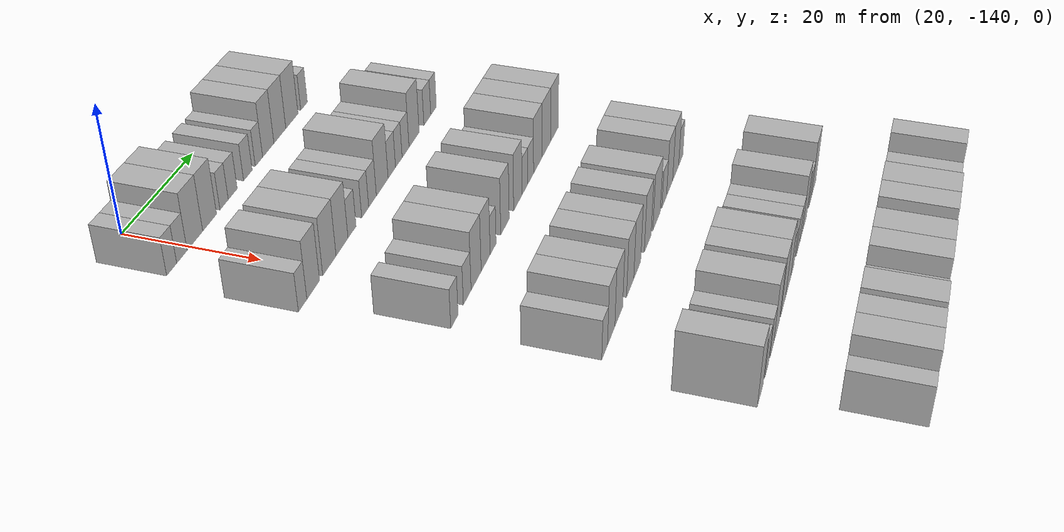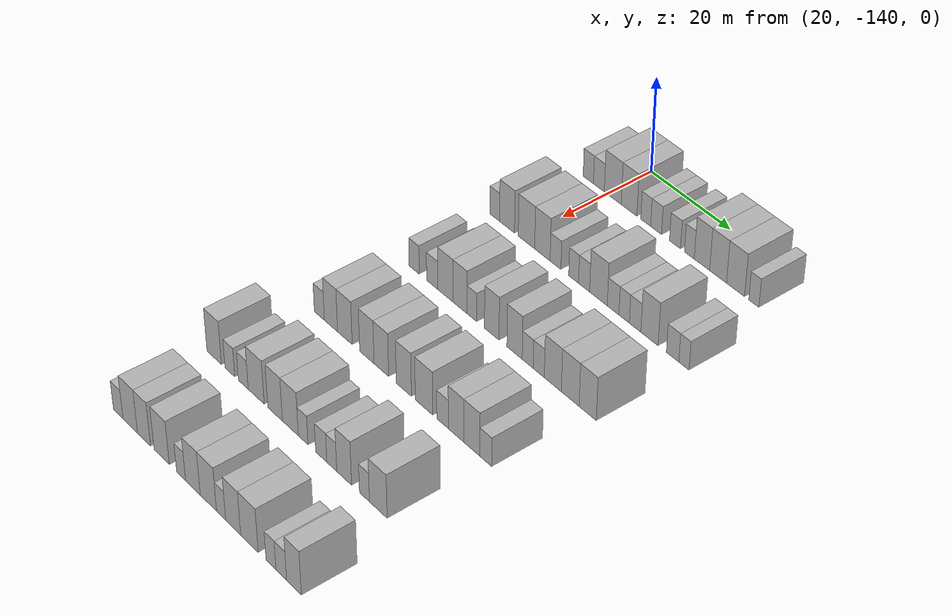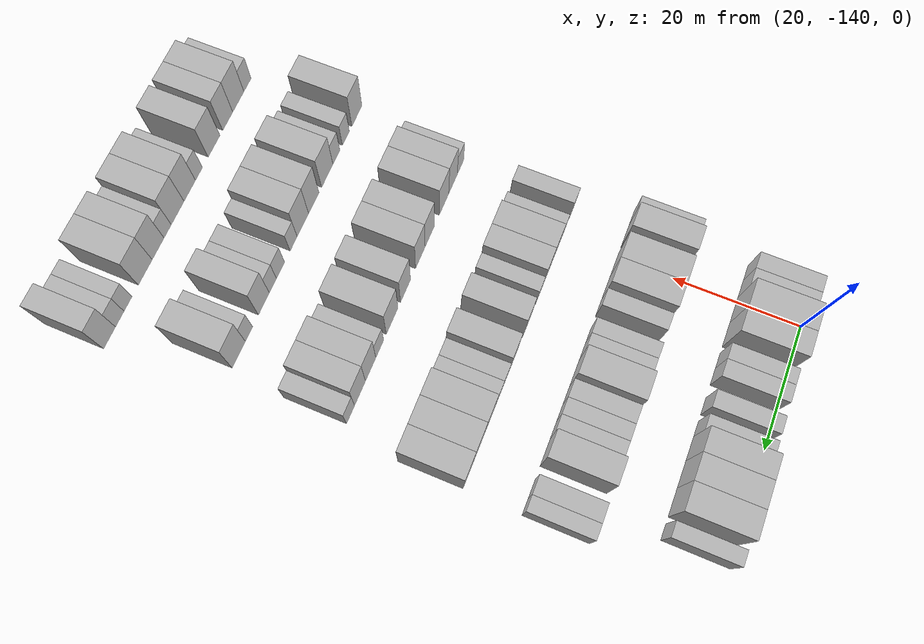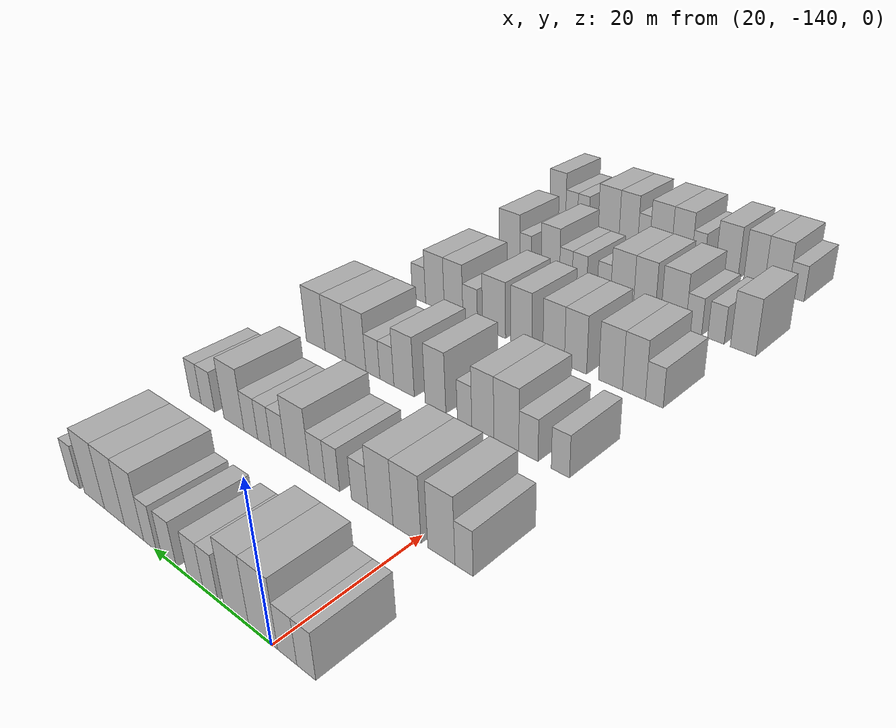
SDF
<sdf version="1.6">
 <world name="default">
  <model name="building_49">
   <static>1</static>
   <pose>25.0000 -145.0528 0 0.000000 0.000000 0.000000</pose>
   <link name="link">
    <pose>0 0 3.00 0 0 0</pose>
    <collision name="collision"><geometry><box><size>10.0000 2.6950 6.0000</size></box></geometry></collision>
    <visual name="visual">
     <cast_shadows>0</cast_shadows>
     <geometry><box><size>10.0000 2.6950 6.0000</size></box></geometry>
     <material>
      <script>
       <uri>model://HANNAS_wall/materials/scripts</uri>
       <uri>model://HANNAS_wall/materials/textures</uri>
       <name>vrc/HANNAS_wall</name>
      </script>
     </material>
    </visual>
   </link>
  </model>
  <model name="building_50">
   <static>1</static>
   <pose>25.0000 -142.2822 0 0.000000 0.000000 0.000000</pose>
   <link name="link">
    <pose>0 0 3.00 0 0 0</pose>
    <collision name="collision"><geometry><box><size>10.0000 2.8463 6.0000</size></box></geometry></collision>
    <visual name="visual">
     <cast_shadows>0</cast_shadows>
     <geometry><box><size>10.0000 2.8463 6.0000</size></box></geometry>
     <material>
      <script>
       <uri>model://HANNAS_wall/materials/scripts</uri>
       <uri>model://HANNAS_wall/materials/textures</uri>
       <name>vrc/HANNAS_wall</name>
      </script>
     </material>
    </visual>
   </link>
  </model>
  <model name="building_51">
   <static>1</static>
   <pose>25.0000 -138.6550 0 0.000000 0.000000 0.000000</pose>
   <link name="link">
    <pose>0 0 4.50 0 0 0</pose>
    <collision name="collision"><geometry><box><size>10.0000 4.4079 9.0000</size></box></geometry></collision>
    <visual name="visual">
     <cast_shadows>0</cast_shadows>
     <geometry><box><size>10.0000 4.4079 9.0000</size></box></geometry>
     <material>
      <script>
       <uri>model://HANNAS_wall/materials/scripts</uri>
       <uri>model://HANNAS_wall/materials/textures</uri>
       <name>vrc/HANNAS_wall</name>
      </script>
     </material>
    </visual>
   </link>
  </model>
  <model name="building_52">
   <static>1</static>
   <pose>25.0000 -134.4407 0 0.000000 0.000000 0.000000</pose>
   <link name="link">
    <pose>0 0 4.50 0 0 0</pose>
    <collision name="collision"><geometry><box><size>10.0000 4.0207 9.0000</size></box></geometry></collision>
    <visual name="visual">
     <cast_shadows>0</cast_shadows>
     <geometry><box><size>10.0000 4.0207 9.0000</size></box></geometry>
     <material>
      <script>
       <uri>model://HANNAS_wall/materials/scripts</uri>
       <uri>model://HANNAS_wall/materials/textures</uri>
       <name>vrc/HANNAS_wall</name>
      </script>
     </material>
    </visual>
   </link>
  </model>
  <model name="building_53">
   <static>1</static>
   <pose>25.0000 -130.1752 0 0.000000 0.000000 0.000000</pose>
   <link name="link">
    <pose>0 0 3.00 0 0 0</pose>
    <collision name="collision"><geometry><box><size>10.0000 2.5105 6.0000</size></box></geometry></collision>
    <visual name="visual">
     <cast_shadows>0</cast_shadows>
     <geometry><box><size>10.0000 2.5105 6.0000</size></box></geometry>
     <material>
      <script>
       <uri>model://HANNAS_wall/materials/scripts</uri>
       <uri>model://HANNAS_wall/materials/textures</uri>
       <name>vrc/HANNAS_wall</name>
      </script>
     </material>
    </visual>
   </link>
  </model>
  <model name="building_54">
   <static>1</static>
   <pose>25.0000 -127.5446 0 0.000000 0.000000 0.000000</pose>
   <link name="link">
    <pose>0 0 3.00 0 0 0</pose>
    <collision name="collision"><geometry><box><size>10.0000 2.7506 6.0000</size></box></geometry></collision>
    <visual name="visual">
     <cast_shadows>0</cast_shadows>
     <geometry><box><size>10.0000 2.7506 6.0000</size></box></geometry>
     <material>
      <script>
       <uri>model://HANNAS_wall/materials/scripts</uri>
       <uri>model://HANNAS_wall/materials/textures</uri>
       <name>vrc/HANNAS_wall</name>
      </script>
     </material>
    </visual>
   </link>
  </model>
  <model name="building_55">
   <static>1</static>
   <pose>25.0000 -122.8030 0 0.000000 0.000000 0.000000</pose>
   <link name="link">
    <pose>0 0 3.00 0 0 0</pose>
    <collision name="collision"><geometry><box><size>10.0000 2.7326 6.0000</size></box></geometry></collision>
    <visual name="visual">
     <cast_shadows>0</cast_shadows>
     <geometry><box><size>10.0000 2.7326 6.0000</size></box></geometry>
     <material>
      <script>
       <uri>model://HANNAS_wall/materials/scripts</uri>
       <uri>model://HANNAS_wall/materials/textures</uri>
       <name>vrc/HANNAS_wall</name>
      </script>
     </material>
    </visual>
   </link>
  </model>
  <model name="building_56">
   <static>1</static>
   <pose>25.0000 -119.2318 0 0.000000 0.000000 0.000000</pose>
   <link name="link">
    <pose>0 0 3.00 0 0 0</pose>
    <collision name="collision"><geometry><box><size>10.0000 2.4099 6.0000</size></box></geometry></collision>
    <visual name="visual">
     <cast_shadows>0</cast_shadows>
     <geometry><box><size>10.0000 2.4099 6.0000</size></box></geometry>
     <material>
      <script>
       <uri>model://HANNAS_wall/materials/scripts</uri>
       <uri>model://HANNAS_wall/materials/textures</uri>
       <name>vrc/HANNAS_wall</name>
      </script>
     </material>
    </visual>
   </link>
  </model>
  <model name="building_57">
   <static>1</static>
   <pose>25.0000 -116.1468 0 0.000000 0.000000 0.000000</pose>
   <link name="link">
    <pose>0 0 4.50 0 0 0</pose>
    <collision name="collision"><geometry><box><size>10.0000 3.7600 9.0000</size></box></geometry></collision>
    <visual name="visual">
     <cast_shadows>0</cast_shadows>
     <geometry><box><size>10.0000 3.7600 9.0000</size></box></geometry>
     <material>
      <script>
       <uri>model://HANNAS_wall/materials/scripts</uri>
       <uri>model://HANNAS_wall/materials/textures</uri>
       <name>vrc/HANNAS_wall</name>
      </script>
     </material>
    </visual>
   </link>
  </model>
  <model name="building_58">
   <static>1</static>
   <pose>25.0000 -112.2133 0 0.000000 0.000000 0.000000</pose>
   <link name="link">
    <pose>0 0 4.50 0 0 0</pose>
    <collision name="collision"><geometry><box><size>10.0000 4.1070 9.0000</size></box></geometry></collision>
    <visual name="visual">
     <cast_shadows>0</cast_shadows>
     <geometry><box><size>10.0000 4.1070 9.0000</size></box></geometry>
     <material>
      <script>
       <uri>model://HANNAS_wall/materials/scripts</uri>
       <uri>model://HANNAS_wall/materials/textures</uri>
       <name>vrc/HANNAS_wall</name>
      </script>
     </material>
    </visual>
   </link>
  </model>
  <model name="building_59">
   <static>1</static>
   <pose>25.0000 -108.0051 0 0.000000 0.000000 0.000000</pose>
   <link name="link">
    <pose>0 0 4.50 0 0 0</pose>
    <collision name="collision"><geometry><box><size>10.0000 4.3094 9.0000</size></box></geometry></collision>
    <visual name="visual">
     <cast_shadows>0</cast_shadows>
     <geometry><box><size>10.0000 4.3094 9.0000</size></box></geometry>
     <material>
      <script>
       <uri>model://HANNAS_wall/materials/scripts</uri>
       <uri>model://HANNAS_wall/materials/textures</uri>
       <name>vrc/HANNAS_wall</name>
      </script>
     </material>
    </visual>
   </link>
  </model>
  <model name="building_60">
   <static>1</static>
   <pose>25.0000 -103.6474 0 0.000000 0.000000 0.000000</pose>
   <link name="link">
    <pose>0 0 3.00 0 0 0</pose>
    <collision name="collision"><geometry><box><size>10.0000 2.4061 6.0000</size></box></geometry></collision>
    <visual name="visual">
     <cast_shadows>0</cast_shadows>
     <geometry><box><size>10.0000 2.4061 6.0000</size></box></geometry>
     <material>
      <script>
       <uri>model://HANNAS_wall/materials/scripts</uri>
       <uri>model://HANNAS_wall/materials/textures</uri>
       <name>vrc/HANNAS_wall</name>
      </script>
     </material>
    </visual>
   </link>
  </model>
  <model name="building_227">
   <static>1</static>
   <pose>44.0000 -147.0360 0 0.000000 0.000000 0.000000</pose>
   <link name="link">
    <pose>0 0 3.00 0 0 0</pose>
    <collision name="collision"><geometry><box><size>10.0000 2.5524 6.0000</size></box></geometry></collision>
    <visual name="visual">
     <cast_shadows>0</cast_shadows>
     <geometry><box><size>10.0000 2.5524 6.0000</size></box></geometry>
     <material>
      <script>
       <uri>model://HANNAS_wall/materials/scripts</uri>
       <uri>model://HANNAS_wall/materials/textures</uri>
       <name>vrc/HANNAS_wall</name>
      </script>
     </material>
    </visual>
   </link>
  </model>
  <model name="building_228">
   <static>1</static>
   <pose>44.0000 -143.7750 0 0.000000 0.000000 0.000000</pose>
   <link name="link">
    <pose>0 0 4.50 0 0 0</pose>
    <collision name="collision"><geometry><box><size>10.0000 3.9695 9.0000</size></box></geometry></collision>
    <visual name="visual">
     <cast_shadows>0</cast_shadows>
     <geometry><box><size>10.0000 3.9695 9.0000</size></box></geometry>
     <material>
      <script>
       <uri>model://HANNAS_wall/materials/scripts</uri>
       <uri>model://HANNAS_wall/materials/textures</uri>
       <name>vrc/HANNAS_wall</name>
      </script>
     </material>
    </visual>
   </link>
  </model>
  <model name="building_229">
   <static>1</static>
   <pose>44.0000 -138.6386 0 0.000000 0.000000 0.000000</pose>
   <link name="link">
    <pose>0 0 4.50 0 0 0</pose>
    <collision name="collision"><geometry><box><size>10.0000 4.3034 9.0000</size></box></geometry></collision>
    <visual name="visual">
     <cast_shadows>0</cast_shadows>
     <geometry><box><size>10.0000 4.3034 9.0000</size></box></geometry>
     <material>
      <script>
       <uri>model://HANNAS_wall/materials/scripts</uri>
       <uri>model://HANNAS_wall/materials/textures</uri>
       <name>vrc/HANNAS_wall</name>
      </script>
     </material>
    </visual>
   </link>
  </model>
  <model name="building_230">
   <static>1</static>
   <pose>44.0000 -134.4800 0 0.000000 0.000000 0.000000</pose>
   <link name="link">
    <pose>0 0 4.50 0 0 0</pose>
    <collision name="collision"><geometry><box><size>10.0000 4.0137 9.0000</size></box></geometry></collision>
    <visual name="visual">
     <cast_shadows>0</cast_shadows>
     <geometry><box><size>10.0000 4.0137 9.0000</size></box></geometry>
     <material>
      <script>
       <uri>model://HANNAS_wall/materials/scripts</uri>
       <uri>model://HANNAS_wall/materials/textures</uri>
       <name>vrc/HANNAS_wall</name>
      </script>
     </material>
    </visual>
   </link>
  </model>
  <model name="building_231">
   <static>1</static>
   <pose>44.0000 -131.0847 0 0.000000 0.000000 0.000000</pose>
   <link name="link">
    <pose>0 0 3.00 0 0 0</pose>
    <collision name="collision"><geometry><box><size>10.0000 2.7768 6.0000</size></box></geometry></collision>
    <visual name="visual">
     <cast_shadows>0</cast_shadows>
     <geometry><box><size>10.0000 2.7768 6.0000</size></box></geometry>
     <material>
      <script>
       <uri>model://HANNAS_wall/materials/scripts</uri>
       <uri>model://HANNAS_wall/materials/textures</uri>
       <name>vrc/HANNAS_wall</name>
      </script>
     </material>
    </visual>
   </link>
  </model>
  <model name="building_232">
   <static>1</static>
   <pose>44.0000 -126.4527 0 0.000000 0.000000 0.000000</pose>
   <link name="link">
    <pose>0 0 3.00 0 0 0</pose>
    <collision name="collision"><geometry><box><size>10.0000 2.4872 6.0000</size></box></geometry></collision>
    <visual name="visual">
     <cast_shadows>0</cast_shadows>
     <geometry><box><size>10.0000 2.4872 6.0000</size></box></geometry>
     <material>
      <script>
       <uri>model://HANNAS_wall/materials/scripts</uri>
       <uri>model://HANNAS_wall/materials/textures</uri>
       <name>vrc/HANNAS_wall</name>
      </script>
     </material>
    </visual>
   </link>
  </model>
  <model name="building_233">
   <static>1</static>
   <pose>44.0000 -123.8088 0 0.000000 0.000000 0.000000</pose>
   <link name="link">
    <pose>0 0 3.00 0 0 0</pose>
    <collision name="collision"><geometry><box><size>10.0000 2.8005 6.0000</size></box></geometry></collision>
    <visual name="visual">
     <cast_shadows>0</cast_shadows>
     <geometry><box><size>10.0000 2.8005 6.0000</size></box></geometry>
     <material>
      <script>
       <uri>model://HANNAS_wall/materials/scripts</uri>
       <uri>model://HANNAS_wall/materials/textures</uri>
       <name>vrc/HANNAS_wall</name>
      </script>
     </material>
    </visual>
   </link>
  </model>
  <model name="building_234">
   <static>1</static>
   <pose>44.0000 -120.2066 0 0.000000 0.000000 0.000000</pose>
   <link name="link">
    <pose>0 0 4.50 0 0 0</pose>
    <collision name="collision"><geometry><box><size>10.0000 4.4039 9.0000</size></box></geometry></collision>
    <visual name="visual">
     <cast_shadows>0</cast_shadows>
     <geometry><box><size>10.0000 4.4039 9.0000</size></box></geometry>
     <material>
      <script>
       <uri>model://HANNAS_wall/materials/scripts</uri>
       <uri>model://HANNAS_wall/materials/textures</uri>
       <name>vrc/HANNAS_wall</name>
      </script>
     </material>
    </visual>
   </link>
  </model>
  <model name="building_235">
   <static>1</static>
   <pose>44.0000 -116.5727 0 0.000000 0.000000 0.000000</pose>
   <link name="link">
    <pose>0 0 3.00 0 0 0</pose>
    <collision name="collision"><geometry><box><size>10.0000 2.8639 6.0000</size></box></geometry></collision>
    <visual name="visual">
     <cast_shadows>0</cast_shadows>
     <geometry><box><size>10.0000 2.8639 6.0000</size></box></geometry>
     <material>
      <script>
       <uri>model://HANNAS_wall/materials/scripts</uri>
       <uri>model://HANNAS_wall/materials/textures</uri>
       <name>vrc/HANNAS_wall</name>
      </script>
     </material>
    </visual>
   </link>
  </model>
  <model name="building_236">
   <static>1</static>
   <pose>44.0000 -113.8488 0 0.000000 0.000000 0.000000</pose>
   <link name="link">
    <pose>0 0 3.00 0 0 0</pose>
    <collision name="collision"><geometry><box><size>10.0000 2.5841 6.0000</size></box></geometry></collision>
    <visual name="visual">
     <cast_shadows>0</cast_shadows>
     <geometry><box><size>10.0000 2.5841 6.0000</size></box></geometry>
     <material>
      <script>
       <uri>model://HANNAS_wall/materials/scripts</uri>
       <uri>model://HANNAS_wall/materials/textures</uri>
       <name>vrc/HANNAS_wall</name>
      </script>
     </material>
    </visual>
   </link>
  </model>
  <model name="building_237">
   <static>1</static>
   <pose>44.0000 -111.1654 0 0.000000 0.000000 0.000000</pose>
   <link name="link">
    <pose>0 0 3.00 0 0 0</pose>
    <collision name="collision"><geometry><box><size>10.0000 2.7827 6.0000</size></box></geometry></collision>
    <visual name="visual">
     <cast_shadows>0</cast_shadows>
     <geometry><box><size>10.0000 2.7827 6.0000</size></box></geometry>
     <material>
      <script>
       <uri>model://HANNAS_wall/materials/scripts</uri>
       <uri>model://HANNAS_wall/materials/textures</uri>
       <name>vrc/HANNAS_wall</name>
      </script>
     </material>
    </visual>
   </link>
  </model>
  <model name="building_238">
   <static>1</static>
   <pose>44.0000 -107.6906 0 0.000000 0.000000 0.000000</pose>
   <link name="link">
    <pose>0 0 4.50 0 0 0</pose>
    <collision name="collision"><geometry><box><size>10.0000 4.1669 9.0000</size></box></geometry></collision>
    <visual name="visual">
     <cast_shadows>0</cast_shadows>
     <geometry><box><size>10.0000 4.1669 9.0000</size></box></geometry>
     <material>
      <script>
       <uri>model://HANNAS_wall/materials/scripts</uri>
       <uri>model://HANNAS_wall/materials/textures</uri>
       <name>vrc/HANNAS_wall</name>
      </script>
     </material>
    </visual>
   </link>
  </model>
  <model name="building_239">
   <static>1</static>
   <pose>44.0000 -102.1383 0 0.000000 0.000000 0.000000</pose>
   <link name="link">
    <pose>0 0 3.00 0 0 0</pose>
    <collision name="collision"><geometry><box><size>10.0000 2.9377 6.0000</size></box></geometry></collision>
    <visual name="visual">
     <cast_shadows>0</cast_shadows>
     <geometry><box><size>10.0000 2.9377 6.0000</size></box></geometry>
     <material>
      <script>
       <uri>model://HANNAS_wall/materials/scripts</uri>
       <uri>model://HANNAS_wall/materials/textures</uri>
       <name>vrc/HANNAS_wall</name>
      </script>
     </material>
    </visual>
   </link>
  </model>
  <model name="building_240">
   <static>1</static>
   <pose>44.0000 -99.4593 0 0.000000 0.000000 0.000000</pose>
   <link name="link">
    <pose>0 0 3.00 0 0 0</pose>
    <collision name="collision"><geometry><box><size>10.0000 2.4203 6.0000</size></box></geometry></collision>
    <visual name="visual">
     <cast_shadows>0</cast_shadows>
     <geometry><box><size>10.0000 2.4203 6.0000</size></box></geometry>
     <material>
      <script>
       <uri>model://HANNAS_wall/materials/scripts</uri>
       <uri>model://HANNAS_wall/materials/textures</uri>
       <name>vrc/HANNAS_wall</name>
      </script>
     </material>
    </visual>
   </link>
  </model>
  <model name="building_390">
   <static>1</static>
   <pose>63.0000 -144.6253 0 0.000000 0.000000 0.000000</pose>
   <link name="link">
    <pose>0 0 3.00 0 0 0</pose>
    <collision name="collision"><geometry><box><size>10.0000 2.7166 6.0000</size></box></geometry></collision>
    <visual name="visual">
     <cast_shadows>0</cast_shadows>
     <geometry><box><size>10.0000 2.7166 6.0000</size></box></geometry>
     <material>
      <script>
       <uri>model://HANNAS_wall/materials/scripts</uri>
       <uri>model://HANNAS_wall/materials/textures</uri>
       <name>vrc/HANNAS_wall</name>
      </script>
     </material>
    </visual>
   </link>
  </model>
  <model name="building_391">
   <static>1</static>
   <pose>63.0000 -139.7738 0 0.000000 0.000000 0.000000</pose>
   <link name="link">
    <pose>0 0 3.00 0 0 0</pose>
    <collision name="collision"><geometry><box><size>10.0000 2.9865 6.0000</size></box></geometry></collision>
    <visual name="visual">
     <cast_shadows>0</cast_shadows>
     <geometry><box><size>10.0000 2.9865 6.0000</size></box></geometry>
     <material>
      <script>
       <uri>model://HANNAS_wall/materials/scripts</uri>
       <uri>model://HANNAS_wall/materials/textures</uri>
       <name>vrc/HANNAS_wall</name>
      </script>
     </material>
    </visual>
   </link>
  </model>
  <model name="building_392">
   <static>1</static>
   <pose>63.0000 -136.2728 0 0.000000 0.000000 0.000000</pose>
   <link name="link">
    <pose>0 0 4.50 0 0 0</pose>
    <collision name="collision"><geometry><box><size>10.0000 4.0154 9.0000</size></box></geometry></collision>
    <visual name="visual">
     <cast_shadows>0</cast_shadows>
     <geometry><box><size>10.0000 4.0154 9.0000</size></box></geometry>
     <material>
      <script>
       <uri>model://HANNAS_wall/materials/scripts</uri>
       <uri>model://HANNAS_wall/materials/textures</uri>
       <name>vrc/HANNAS_wall</name>
      </script>
     </material>
    </visual>
   </link>
  </model>
  <model name="building_393">
   <static>1</static>
   <pose>63.0000 -132.4319 0 0.000000 0.000000 0.000000</pose>
   <link name="link">
    <pose>0 0 4.50 0 0 0</pose>
    <collision name="collision"><geometry><box><size>10.0000 3.6664 9.0000</size></box></geometry></collision>
    <visual name="visual">
     <cast_shadows>0</cast_shadows>
     <geometry><box><size>10.0000 3.6664 9.0000</size></box></geometry>
     <material>
      <script>
       <uri>model://HANNAS_wall/materials/scripts</uri>
       <uri>model://HANNAS_wall/materials/textures</uri>
       <name>vrc/HANNAS_wall</name>
      </script>
     </material>
    </visual>
   </link>
  </model>
  <model name="building_394">
   <static>1</static>
   <pose>63.0000 -129.3551 0 0.000000 0.000000 0.000000</pose>
   <link name="link">
    <pose>0 0 3.00 0 0 0</pose>
    <collision name="collision"><geometry><box><size>10.0000 2.4872 6.0000</size></box></geometry></collision>
    <visual name="visual">
     <cast_shadows>0</cast_shadows>
     <geometry><box><size>10.0000 2.4872 6.0000</size></box></geometry>
     <material>
      <script>
       <uri>model://HANNAS_wall/materials/scripts</uri>
       <uri>model://HANNAS_wall/materials/textures</uri>
       <name>vrc/HANNAS_wall</name>
      </script>
     </material>
    </visual>
   </link>
  </model>
  <model name="building_395">
   <static>1</static>
   <pose>63.0000 -124.2596 0 0.000000 0.000000 0.000000</pose>
   <link name="link">
    <pose>0 0 4.50 0 0 0</pose>
    <collision name="collision"><geometry><box><size>10.0000 3.7039 9.0000</size></box></geometry></collision>
    <visual name="visual">
     <cast_shadows>0</cast_shadows>
     <geometry><box><size>10.0000 3.7039 9.0000</size></box></geometry>
     <material>
      <script>
       <uri>model://HANNAS_wall/materials/scripts</uri>
       <uri>model://HANNAS_wall/materials/textures</uri>
       <name>vrc/HANNAS_wall</name>
      </script>
     </material>
    </visual>
   </link>
  </model>
  <model name="building_396">
   <static>1</static>
   <pose>63.0000 -118.4880 0 0.000000 0.000000 0.000000</pose>
   <link name="link">
    <pose>0 0 4.50 0 0 0</pose>
    <collision name="collision"><geometry><box><size>10.0000 3.8392 9.0000</size></box></geometry></collision>
    <visual name="visual">
     <cast_shadows>0</cast_shadows>
     <geometry><box><size>10.0000 3.8392 9.0000</size></box></geometry>
     <material>
      <script>
       <uri>model://HANNAS_wall/materials/scripts</uri>
       <uri>model://HANNAS_wall/materials/textures</uri>
       <name>vrc/HANNAS_wall</name>
      </script>
     </material>
    </visual>
   </link>
  </model>
  <model name="building_397">
   <static>1</static>
   <pose>63.0000 -115.2027 0 0.000000 0.000000 0.000000</pose>
   <link name="link">
    <pose>0 0 3.00 0 0 0</pose>
    <collision name="collision"><geometry><box><size>10.0000 2.7313 6.0000</size></box></geometry></collision>
    <visual name="visual">
     <cast_shadows>0</cast_shadows>
     <geometry><box><size>10.0000 2.7313 6.0000</size></box></geometry>
     <material>
      <script>
       <uri>model://HANNAS_wall/materials/scripts</uri>
       <uri>model://HANNAS_wall/materials/textures</uri>
       <name>vrc/HANNAS_wall</name>
      </script>
     </material>
    </visual>
   </link>
  </model>
  <model name="building_398">
   <static>1</static>
   <pose>63.0000 -112.4610 0 0.000000 0.000000 0.000000</pose>
   <link name="link">
    <pose>0 0 3.00 0 0 0</pose>
    <collision name="collision"><geometry><box><size>10.0000 2.7520 6.0000</size></box></geometry></collision>
    <visual name="visual">
     <cast_shadows>0</cast_shadows>
     <geometry><box><size>10.0000 2.7520 6.0000</size></box></geometry>
     <material>
      <script>
       <uri>model://HANNAS_wall/materials/scripts</uri>
       <uri>model://HANNAS_wall/materials/textures</uri>
       <name>vrc/HANNAS_wall</name>
      </script>
     </material>
    </visual>
   </link>
  </model>
  <model name="building_399">
   <static>1</static>
   <pose>63.0000 -109.0118 0 0.000000 0.000000 0.000000</pose>
   <link name="link">
    <pose>0 0 4.50 0 0 0</pose>
    <collision name="collision"><geometry><box><size>10.0000 4.1464 9.0000</size></box></geometry></collision>
    <visual name="visual">
     <cast_shadows>0</cast_shadows>
     <geometry><box><size>10.0000 4.1464 9.0000</size></box></geometry>
     <material>
      <script>
       <uri>model://HANNAS_wall/materials/scripts</uri>
       <uri>model://HANNAS_wall/materials/textures</uri>
       <name>vrc/HANNAS_wall</name>
      </script>
     </material>
    </visual>
   </link>
  </model>
  <model name="building_400">
   <static>1</static>
   <pose>63.0000 -104.7853 0 0.000000 0.000000 0.000000</pose>
   <link name="link">
    <pose>0 0 4.50 0 0 0</pose>
    <collision name="collision"><geometry><box><size>10.0000 4.3067 9.0000</size></box></geometry></collision>
    <visual name="visual">
     <cast_shadows>0</cast_shadows>
     <geometry><box><size>10.0000 4.3067 9.0000</size></box></geometry>
     <material>
      <script>
       <uri>model://HANNAS_wall/materials/scripts</uri>
       <uri>model://HANNAS_wall/materials/textures</uri>
       <name>vrc/HANNAS_wall</name>
      </script>
     </material>
    </visual>
   </link>
  </model>
  <model name="building_401">
   <static>1</static>
   <pose>63.0000 -100.5796 0 0.000000 0.000000 0.000000</pose>
   <link name="link">
    <pose>0 0 4.50 0 0 0</pose>
    <collision name="collision"><geometry><box><size>10.0000 4.1047 9.0000</size></box></geometry></collision>
    <visual name="visual">
     <cast_shadows>0</cast_shadows>
     <geometry><box><size>10.0000 4.1047 9.0000</size></box></geometry>
     <material>
      <script>
       <uri>model://HANNAS_wall/materials/scripts</uri>
       <uri>model://HANNAS_wall/materials/textures</uri>
       <name>vrc/HANNAS_wall</name>
      </script>
     </material>
    </visual>
   </link>
  </model>
  <model name="building_569">
   <static>1</static>
   <pose>82.0000 -145.0145 0 0.000000 0.000000 0.000000</pose>
   <link name="link">
    <pose>0 0 3.00 0 0 0</pose>
    <collision name="collision"><geometry><box><size>10.0000 2.7376 6.0000</size></box></geometry></collision>
    <visual name="visual">
     <cast_shadows>0</cast_shadows>
     <geometry><box><size>10.0000 2.7376 6.0000</size></box></geometry>
     <material>
      <script>
       <uri>model://HANNAS_wall/materials/scripts</uri>
       <uri>model://HANNAS_wall/materials/textures</uri>
       <name>vrc/HANNAS_wall</name>
      </script>
     </material>
    </visual>
   </link>
  </model>
  <model name="building_570">
   <static>1</static>
   <pose>82.0000 -141.8429 0 0.000000 0.000000 0.000000</pose>
   <link name="link">
    <pose>0 0 4.50 0 0 0</pose>
    <collision name="collision"><geometry><box><size>10.0000 3.6055 9.0000</size></box></geometry></collision>
    <visual name="visual">
     <cast_shadows>0</cast_shadows>
     <geometry><box><size>10.0000 3.6055 9.0000</size></box></geometry>
     <material>
      <script>
       <uri>model://HANNAS_wall/materials/scripts</uri>
       <uri>model://HANNAS_wall/materials/textures</uri>
       <name>vrc/HANNAS_wall</name>
      </script>
     </material>
    </visual>
   </link>
  </model>
  <model name="building_571">
   <static>1</static>
   <pose>82.0000 -138.0807 0 0.000000 0.000000 0.000000</pose>
   <link name="link">
    <pose>0 0 4.50 0 0 0</pose>
    <collision name="collision"><geometry><box><size>10.0000 3.9188 9.0000</size></box></geometry></collision>
    <visual name="visual">
     <cast_shadows>0</cast_shadows>
     <geometry><box><size>10.0000 3.9188 9.0000</size></box></geometry>
     <material>
      <script>
       <uri>model://HANNAS_wall/materials/scripts</uri>
       <uri>model://HANNAS_wall/materials/textures</uri>
       <name>vrc/HANNAS_wall</name>
      </script>
     </material>
    </visual>
   </link>
  </model>
  <model name="building_572">
   <static>1</static>
   <pose>82.0000 -132.2148 0 0.000000 0.000000 0.000000</pose>
   <link name="link">
    <pose>0 0 4.50 0 0 0</pose>
    <collision name="collision"><geometry><box><size>10.0000 3.8132 9.0000</size></box></geometry></collision>
    <visual name="visual">
     <cast_shadows>0</cast_shadows>
     <geometry><box><size>10.0000 3.8132 9.0000</size></box></geometry>
     <material>
      <script>
       <uri>model://HANNAS_wall/materials/scripts</uri>
       <uri>model://HANNAS_wall/materials/textures</uri>
       <name>vrc/HANNAS_wall</name>
      </script>
     </material>
    </visual>
   </link>
  </model>
  <model name="building_573">
   <static>1</static>
   <pose>82.0000 -128.4086 0 0.000000 0.000000 0.000000</pose>
   <link name="link">
    <pose>0 0 4.50 0 0 0</pose>
    <collision name="collision"><geometry><box><size>10.0000 3.7992 9.0000</size></box></geometry></collision>
    <visual name="visual">
     <cast_shadows>0</cast_shadows>
     <geometry><box><size>10.0000 3.7992 9.0000</size></box></geometry>
     <material>
      <script>
       <uri>model://HANNAS_wall/materials/scripts</uri>
       <uri>model://HANNAS_wall/materials/textures</uri>
       <name>vrc/HANNAS_wall</name>
      </script>
     </material>
    </visual>
   </link>
  </model>
  <model name="building_574">
   <static>1</static>
   <pose>82.0000 -122.5682 0 0.000000 0.000000 0.000000</pose>
   <link name="link">
    <pose>0 0 4.50 0 0 0</pose>
    <collision name="collision"><geometry><box><size>10.0000 3.8815 9.0000</size></box></geometry></collision>
    <visual name="visual">
     <cast_shadows>0</cast_shadows>
     <geometry><box><size>10.0000 3.8815 9.0000</size></box></geometry>
     <material>
      <script>
       <uri>model://HANNAS_wall/materials/scripts</uri>
       <uri>model://HANNAS_wall/materials/textures</uri>
       <name>vrc/HANNAS_wall</name>
      </script>
     </material>
    </visual>
   </link>
  </model>
  <model name="building_575">
   <static>1</static>
   <pose>82.0000 -117.4129 0 0.000000 0.000000 0.000000</pose>
   <link name="link">
    <pose>0 0 4.50 0 0 0</pose>
    <collision name="collision"><geometry><box><size>10.0000 4.4291 9.0000</size></box></geometry></collision>
    <visual name="visual">
     <cast_shadows>0</cast_shadows>
     <geometry><box><size>10.0000 4.4291 9.0000</size></box></geometry>
     <material>
      <script>
       <uri>model://HANNAS_wall/materials/scripts</uri>
       <uri>model://HANNAS_wall/materials/textures</uri>
       <name>vrc/HANNAS_wall</name>
      </script>
     </material>
    </visual>
   </link>
  </model>
  <model name="building_576">
   <static>1</static>
   <pose>82.0000 -112.7420 0 0.000000 0.000000 0.000000</pose>
   <link name="link">
    <pose>0 0 3.00 0 0 0</pose>
    <collision name="collision"><geometry><box><size>10.0000 2.9127 6.0000</size></box></geometry></collision>
    <visual name="visual">
     <cast_shadows>0</cast_shadows>
     <geometry><box><size>10.0000 2.9127 6.0000</size></box></geometry>
     <material>
      <script>
       <uri>model://HANNAS_wall/materials/scripts</uri>
       <uri>model://HANNAS_wall/materials/textures</uri>
       <name>vrc/HANNAS_wall</name>
      </script>
     </material>
    </visual>
   </link>
  </model>
  <model name="building_577">
   <static>1</static>
   <pose>82.0000 -109.3770 0 0.000000 0.000000 0.000000</pose>
   <link name="link">
    <pose>0 0 4.50 0 0 0</pose>
    <collision name="collision"><geometry><box><size>10.0000 3.8174 9.0000</size></box></geometry></collision>
    <visual name="visual">
     <cast_shadows>0</cast_shadows>
     <geometry><box><size>10.0000 3.8174 9.0000</size></box></geometry>
     <material>
      <script>
       <uri>model://HANNAS_wall/materials/scripts</uri>
       <uri>model://HANNAS_wall/materials/textures</uri>
       <name>vrc/HANNAS_wall</name>
      </script>
     </material>
    </visual>
   </link>
  </model>
  <model name="building_578">
   <static>1</static>
   <pose>82.0000 -105.4913 0 0.000000 0.000000 0.000000</pose>
   <link name="link">
    <pose>0 0 4.50 0 0 0</pose>
    <collision name="collision"><geometry><box><size>10.0000 3.9539 9.0000</size></box></geometry></collision>
    <visual name="visual">
     <cast_shadows>0</cast_shadows>
     <geometry><box><size>10.0000 3.9539 9.0000</size></box></geometry>
     <material>
      <script>
       <uri>model://HANNAS_wall/materials/scripts</uri>
       <uri>model://HANNAS_wall/materials/textures</uri>
       <name>vrc/HANNAS_wall</name>
      </script>
     </material>
    </visual>
   </link>
  </model>
  <model name="building_579">
   <static>1</static>
   <pose>82.0000 -102.0932 0 0.000000 0.000000 0.000000</pose>
   <link name="link">
    <pose>0 0 3.00 0 0 0</pose>
    <collision name="collision"><geometry><box><size>10.0000 2.8423 6.0000</size></box></geometry></collision>
    <visual name="visual">
     <cast_shadows>0</cast_shadows>
     <geometry><box><size>10.0000 2.8423 6.0000</size></box></geometry>
     <material>
      <script>
       <uri>model://HANNAS_wall/materials/scripts</uri>
       <uri>model://HANNAS_wall/materials/textures</uri>
       <name>vrc/HANNAS_wall</name>
      </script>
     </material>
    </visual>
   </link>
  </model>
  <model name="building_742">
   <static>1</static>
   <pose>101.0000 -147.1959 0 0.000000 0.000000 0.000000</pose>
   <link name="link">
    <pose>0 0 4.50 0 0 0</pose>
    <collision name="collision"><geometry><box><size>10.0000 4.0248 9.0000</size></box></geometry></collision>
    <visual name="visual">
     <cast_shadows>0</cast_shadows>
     <geometry><box><size>10.0000 4.0248 9.0000</size></box></geometry>
     <material>
      <script>
       <uri>model://HANNAS_wall/materials/scripts</uri>
       <uri>model://HANNAS_wall/materials/textures</uri>
       <name>vrc/HANNAS_wall</name>
      </script>
     </material>
    </visual>
   </link>
  </model>
  <model name="building_743">
   <static>1</static>
   <pose>101.0000 -142.8310 0 0.000000 0.000000 0.000000</pose>
   <link name="link">
    <pose>0 0 3.00 0 0 0</pose>
    <collision name="collision"><geometry><box><size>10.0000 2.7050 6.0000</size></box></geometry></collision>
    <visual name="visual">
     <cast_shadows>0</cast_shadows>
     <geometry><box><size>10.0000 2.7050 6.0000</size></box></geometry>
     <material>
      <script>
       <uri>model://HANNAS_wall/materials/scripts</uri>
       <uri>model://HANNAS_wall/materials/textures</uri>
       <name>vrc/HANNAS_wall</name>
      </script>
     </material>
    </visual>
   </link>
  </model>
  <model name="building_744">
   <static>1</static>
   <pose>101.0000 -139.1307 0 0.000000 0.000000 0.000000</pose>
   <link name="link">
    <pose>0 0 3.00 0 0 0</pose>
    <collision name="collision"><geometry><box><size>10.0000 2.6956 6.0000</size></box></geometry></collision>
    <visual name="visual">
     <cast_shadows>0</cast_shadows>
     <geometry><box><size>10.0000 2.6956 6.0000</size></box></geometry>
     <material>
      <script>
       <uri>model://HANNAS_wall/materials/scripts</uri>
       <uri>model://HANNAS_wall/materials/textures</uri>
       <name>vrc/HANNAS_wall</name>
      </script>
     </material>
    </visual>
   </link>
  </model>
  <model name="building_745">
   <static>1</static>
   <pose>101.0000 -135.6218 0 0.000000 0.000000 0.000000</pose>
   <link name="link">
    <pose>0 0 4.50 0 0 0</pose>
    <collision name="collision"><geometry><box><size>10.0000 4.3222 9.0000</size></box></geometry></collision>
    <visual name="visual">
     <cast_shadows>0</cast_shadows>
     <geometry><box><size>10.0000 4.3222 9.0000</size></box></geometry>
     <material>
      <script>
       <uri>model://HANNAS_wall/materials/scripts</uri>
       <uri>model://HANNAS_wall/materials/textures</uri>
       <name>vrc/HANNAS_wall</name>
      </script>
     </material>
    </visual>
   </link>
  </model>
  <model name="building_746">
   <static>1</static>
   <pose>101.0000 -130.5185 0 0.000000 0.000000 0.000000</pose>
   <link name="link">
    <pose>0 0 4.50 0 0 0</pose>
    <collision name="collision"><geometry><box><size>10.0000 3.8843 9.0000</size></box></geometry></collision>
    <visual name="visual">
     <cast_shadows>0</cast_shadows>
     <geometry><box><size>10.0000 3.8843 9.0000</size></box></geometry>
     <material>
      <script>
       <uri>model://HANNAS_wall/materials/scripts</uri>
       <uri>model://HANNAS_wall/materials/textures</uri>
       <name>vrc/HANNAS_wall</name>
      </script>
     </material>
    </visual>
   </link>
  </model>
  <model name="building_747">
   <static>1</static>
   <pose>101.0000 -126.4671 0 0.000000 0.000000 0.000000</pose>
   <link name="link">
    <pose>0 0 4.50 0 0 0</pose>
    <collision name="collision"><geometry><box><size>10.0000 4.2186 9.0000</size></box></geometry></collision>
    <visual name="visual">
     <cast_shadows>0</cast_shadows>
     <geometry><box><size>10.0000 4.2186 9.0000</size></box></geometry>
     <material>
      <script>
       <uri>model://HANNAS_wall/materials/scripts</uri>
       <uri>model://HANNAS_wall/materials/textures</uri>
       <name>vrc/HANNAS_wall</name>
      </script>
     </material>
    </visual>
   </link>
  </model>
  <model name="building_748">
   <static>1</static>
   <pose>101.0000 -123.0888 0 0.000000 0.000000 0.000000</pose>
   <link name="link">
    <pose>0 0 3.00 0 0 0</pose>
    <collision name="collision"><geometry><box><size>10.0000 2.5379 6.0000</size></box></geometry></collision>
    <visual name="visual">
     <cast_shadows>0</cast_shadows>
     <geometry><box><size>10.0000 2.5379 6.0000</size></box></geometry>
     <material>
      <script>
       <uri>model://HANNAS_wall/materials/scripts</uri>
       <uri>model://HANNAS_wall/materials/textures</uri>
       <name>vrc/HANNAS_wall</name>
      </script>
     </material>
    </visual>
   </link>
  </model>
  <model name="building_749">
   <static>1</static>
   <pose>101.0000 -118.3817 0 0.000000 0.000000 0.000000</pose>
   <link name="link">
    <pose>0 0 3.00 0 0 0</pose>
    <collision name="collision"><geometry><box><size>10.0000 2.8763 6.0000</size></box></geometry></collision>
    <visual name="visual">
     <cast_shadows>0</cast_shadows>
     <geometry><box><size>10.0000 2.8763 6.0000</size></box></geometry>
     <material>
      <script>
       <uri>model://HANNAS_wall/materials/scripts</uri>
       <uri>model://HANNAS_wall/materials/textures</uri>
       <name>vrc/HANNAS_wall</name>
      </script>
     </material>
    </visual>
   </link>
  </model>
  <model name="building_750">
   <static>1</static>
   <pose>101.0000 -115.6818 0 0.000000 0.000000 0.000000</pose>
   <link name="link">
    <pose>0 0 3.00 0 0 0</pose>
    <collision name="collision"><geometry><box><size>10.0000 2.5236 6.0000</size></box></geometry></collision>
    <visual name="visual">
     <cast_shadows>0</cast_shadows>
     <geometry><box><size>10.0000 2.5236 6.0000</size></box></geometry>
     <material>
      <script>
       <uri>model://HANNAS_wall/materials/scripts</uri>
       <uri>model://HANNAS_wall/materials/textures</uri>
       <name>vrc/HANNAS_wall</name>
      </script>
     </material>
    </visual>
   </link>
  </model>
  <model name="building_751">
   <static>1</static>
   <pose>101.0000 -112.5351 0 0.000000 0.000000 0.000000</pose>
   <link name="link">
    <pose>0 0 4.50 0 0 0</pose>
    <collision name="collision"><geometry><box><size>10.0000 3.7698 9.0000</size></box></geometry></collision>
    <visual name="visual">
     <cast_shadows>0</cast_shadows>
     <geometry><box><size>10.0000 3.7698 9.0000</size></box></geometry>
     <material>
      <script>
       <uri>model://HANNAS_wall/materials/scripts</uri>
       <uri>model://HANNAS_wall/materials/textures</uri>
       <name>vrc/HANNAS_wall</name>
      </script>
     </material>
    </visual>
   </link>
  </model>
  <model name="building_752">
   <static>1</static>
   <pose>101.0000 -107.4115 0 0.000000 0.000000 0.000000</pose>
   <link name="link">
    <pose>0 0 3.00 0 0 0</pose>
    <collision name="collision"><geometry><box><size>10.0000 2.4774 6.0000</size></box></geometry></collision>
    <visual name="visual">
     <cast_shadows>0</cast_shadows>
     <geometry><box><size>10.0000 2.4774 6.0000</size></box></geometry>
     <material>
      <script>
       <uri>model://HANNAS_wall/materials/scripts</uri>
       <uri>model://HANNAS_wall/materials/textures</uri>
       <name>vrc/HANNAS_wall</name>
      </script>
     </material>
    </visual>
   </link>
  </model>
  <model name="building_753">
   <static>1</static>
   <pose>101.0000 -103.9767 0 0.000000 0.000000 0.000000</pose>
   <link name="link">
    <pose>0 0 4.50 0 0 0</pose>
    <collision name="collision"><geometry><box><size>10.0000 4.3922 9.0000</size></box></geometry></collision>
    <visual name="visual">
     <cast_shadows>0</cast_shadows>
     <geometry><box><size>10.0000 4.3922 9.0000</size></box></geometry>
     <material>
      <script>
       <uri>model://HANNAS_wall/materials/scripts</uri>
       <uri>model://HANNAS_wall/materials/textures</uri>
       <name>vrc/HANNAS_wall</name>
      </script>
     </material>
    </visual>
   </link>
  </model>
  <model name="building_919">
   <static>1</static>
   <pose>120.0000 -145.6312 0 0.000000 0.000000 0.000000</pose>
   <link name="link">
    <pose>0 0 3.00 0 0 0</pose>
    <collision name="collision"><geometry><box><size>10.0000 2.6923 6.0000</size></box></geometry></collision>
    <visual name="visual">
     <cast_shadows>0</cast_shadows>
     <geometry><box><size>10.0000 2.6923 6.0000</size></box></geometry>
     <material>
      <script>
       <uri>model://HANNAS_wall/materials/scripts</uri>
       <uri>model://HANNAS_wall/materials/textures</uri>
       <name>vrc/HANNAS_wall</name>
      </script>
     </material>
    </visual>
   </link>
  </model>
  <model name="building_920">
   <static>1</static>
   <pose>120.0000 -142.2312 0 0.000000 0.000000 0.000000</pose>
   <link name="link">
    <pose>0 0 4.50 0 0 0</pose>
    <collision name="collision"><geometry><box><size>10.0000 4.1078 9.0000</size></box></geometry></collision>
    <visual name="visual">
     <cast_shadows>0</cast_shadows>
     <geometry><box><size>10.0000 4.1078 9.0000</size></box></geometry>
     <material>
      <script>
       <uri>model://HANNAS_wall/materials/scripts</uri>
       <uri>model://HANNAS_wall/materials/textures</uri>
       <name>vrc/HANNAS_wall</name>
      </script>
     </material>
    </visual>
   </link>
  </model>
  <model name="building_921">
   <static>1</static>
   <pose>120.0000 -138.3689 0 0.000000 0.000000 0.000000</pose>
   <link name="link">
    <pose>0 0 4.50 0 0 0</pose>
    <collision name="collision"><geometry><box><size>10.0000 3.6169 9.0000</size></box></geometry></collision>
    <visual name="visual">
     <cast_shadows>0</cast_shadows>
     <geometry><box><size>10.0000 3.6169 9.0000</size></box></geometry>
     <material>
      <script>
       <uri>model://HANNAS_wall/materials/scripts</uri>
       <uri>model://HANNAS_wall/materials/textures</uri>
       <name>vrc/HANNAS_wall</name>
      </script>
     </material>
    </visual>
   </link>
  </model>
  <model name="building_922">
   <static>1</static>
   <pose>120.0000 -133.4757 0 0.000000 0.000000 0.000000</pose>
   <link name="link">
    <pose>0 0 4.50 0 0 0</pose>
    <collision name="collision"><geometry><box><size>10.0000 4.1696 9.0000</size></box></geometry></collision>
    <visual name="visual">
     <cast_shadows>0</cast_shadows>
     <geometry><box><size>10.0000 4.1696 9.0000</size></box></geometry>
     <material>
      <script>
       <uri>model://HANNAS_wall/materials/scripts</uri>
       <uri>model://HANNAS_wall/materials/textures</uri>
       <name>vrc/HANNAS_wall</name>
      </script>
     </material>
    </visual>
   </link>
  </model>
  <model name="building_923">
   <static>1</static>
   <pose>120.0000 -128.1775 0 0.000000 0.000000 0.000000</pose>
   <link name="link">
    <pose>0 0 3.00 0 0 0</pose>
    <collision name="collision"><geometry><box><size>10.0000 2.4268 6.0000</size></box></geometry></collision>
    <visual name="visual">
     <cast_shadows>0</cast_shadows>
     <geometry><box><size>10.0000 2.4268 6.0000</size></box></geometry>
     <material>
      <script>
       <uri>model://HANNAS_wall/materials/scripts</uri>
       <uri>model://HANNAS_wall/materials/textures</uri>
       <name>vrc/HANNAS_wall</name>
      </script>
     </material>
    </visual>
   </link>
  </model>
  <model name="building_924">
   <static>1</static>
   <pose>120.0000 -124.9968 0 0.000000 0.000000 0.000000</pose>
   <link name="link">
    <pose>0 0 4.50 0 0 0</pose>
    <collision name="collision"><geometry><box><size>10.0000 3.9346 9.0000</size></box></geometry></collision>
    <visual name="visual">
     <cast_shadows>0</cast_shadows>
     <geometry><box><size>10.0000 3.9346 9.0000</size></box></geometry>
     <material>
      <script>
       <uri>model://HANNAS_wall/materials/scripts</uri>
       <uri>model://HANNAS_wall/materials/textures</uri>
       <name>vrc/HANNAS_wall</name>
      </script>
     </material>
    </visual>
   </link>
  </model>
  <model name="building_925">
   <static>1</static>
   <pose>120.0000 -120.8786 0 0.000000 0.000000 0.000000</pose>
   <link name="link">
    <pose>0 0 4.50 0 0 0</pose>
    <collision name="collision"><geometry><box><size>10.0000 4.3020 9.0000</size></box></geometry></collision>
    <visual name="visual">
     <cast_shadows>0</cast_shadows>
     <geometry><box><size>10.0000 4.3020 9.0000</size></box></geometry>
     <material>
      <script>
       <uri>model://HANNAS_wall/materials/scripts</uri>
       <uri>model://HANNAS_wall/materials/textures</uri>
       <name>vrc/HANNAS_wall</name>
      </script>
     </material>
    </visual>
   </link>
  </model>
  <model name="building_926">
   <static>1</static>
   <pose>120.0000 -117.5237 0 0.000000 0.000000 0.000000</pose>
   <link name="link">
    <pose>0 0 3.00 0 0 0</pose>
    <collision name="collision"><geometry><box><size>10.0000 2.4076 6.0000</size></box></geometry></collision>
    <visual name="visual">
     <cast_shadows>0</cast_shadows>
     <geometry><box><size>10.0000 2.4076 6.0000</size></box></geometry>
     <material>
      <script>
       <uri>model://HANNAS_wall/materials/scripts</uri>
       <uri>model://HANNAS_wall/materials/textures</uri>
       <name>vrc/HANNAS_wall</name>
      </script>
     </material>
    </visual>
   </link>
  </model>
  <model name="building_927">
   <static>1</static>
   <pose>120.0000 -114.3762 0 0.000000 0.000000 0.000000</pose>
   <link name="link">
    <pose>0 0 4.50 0 0 0</pose>
    <collision name="collision"><geometry><box><size>10.0000 3.8874 9.0000</size></box></geometry></collision>
    <visual name="visual">
     <cast_shadows>0</cast_shadows>
     <geometry><box><size>10.0000 3.8874 9.0000</size></box></geometry>
     <material>
      <script>
       <uri>model://HANNAS_wall/materials/scripts</uri>
       <uri>model://HANNAS_wall/materials/textures</uri>
       <name>vrc/HANNAS_wall</name>
      </script>
     </material>
    </visual>
   </link>
  </model>
  <model name="building_928">
   <static>1</static>
   <pose>120.0000 -110.1960 0 0.000000 0.000000 0.000000</pose>
   <link name="link">
    <pose>0 0 4.50 0 0 0</pose>
    <collision name="collision"><geometry><box><size>10.0000 4.4730 9.0000</size></box></geometry></collision>
    <visual name="visual">
     <cast_shadows>0</cast_shadows>
     <geometry><box><size>10.0000 4.4730 9.0000</size></box></geometry>
     <material>
      <script>
       <uri>model://HANNAS_wall/materials/scripts</uri>
       <uri>model://HANNAS_wall/materials/textures</uri>
       <name>vrc/HANNAS_wall</name>
      </script>
     </material>
    </visual>
   </link>
  </model>
  <model name="building_929">
   <static>1</static>
   <pose>120.0000 -104.7060 0 0.000000 0.000000 0.000000</pose>
   <link name="link">
    <pose>0 0 3.00 0 0 0</pose>
    <collision name="collision"><geometry><box><size>10.0000 2.5070 6.0000</size></box></geometry></collision>
    <visual name="visual">
     <cast_shadows>0</cast_shadows>
     <geometry><box><size>10.0000 2.5070 6.0000</size></box></geometry>
     <material>
      <script>
       <uri>model://HANNAS_wall/materials/scripts</uri>
       <uri>model://HANNAS_wall/materials/textures</uri>
       <name>vrc/HANNAS_wall</name>
      </script>
     </material>
    </visual>
   </link>
  </model>
  <model name="building_930">
   <static>1</static>
   <pose>120.0000 -102.1223 0 0.000000 0.000000 0.000000</pose>
   <link name="link">
    <pose>0 0 3.00 0 0 0</pose>
    <collision name="collision"><geometry><box><size>10.0000 2.6605 6.0000</size></box></geometry></collision>
    <visual name="visual">
     <cast_shadows>0</cast_shadows>
     <geometry><box><size>10.0000 2.6605 6.0000</size></box></geometry>
     <material>
      <script>
       <uri>model://HANNAS_wall/materials/scripts</uri>
       <uri>model://HANNAS_wall/materials/textures</uri>
       <name>vrc/HANNAS_wall</name>
      </script>
     </material>
    </visual>
   </link>
  </model>
  <model name="building_931">
   <static>1</static>
   <pose>120.0000 -98.9620 0 0.000000 0.000000 0.000000</pose>
   <link name="link">
    <pose>0 0 4.50 0 0 0</pose>
    <collision name="collision"><geometry><box><size>10.0000 3.6601 9.0000</size></box></geometry></collision>
    <visual name="visual">
     <cast_shadows>0</cast_shadows>
     <geometry><box><size>10.0000 3.6601 9.0000</size></box></geometry>
     <material>
      <script>
       <uri>model://HANNAS_wall/materials/scripts</uri>
       <uri>model://HANNAS_wall/materials/textures</uri>
       <name>vrc/HANNAS_wall</name>
      </script>
     </material>
    </visual>
   </link>
  </model>
 </world>
</sdf>
